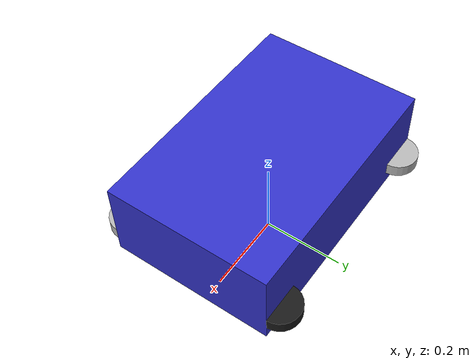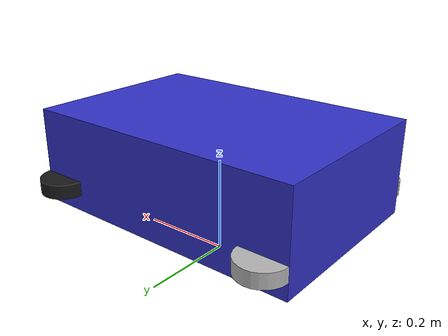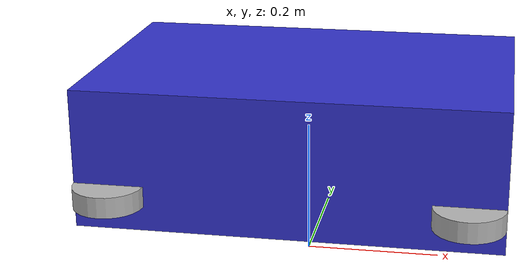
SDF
<?xml version="1.0" ?>
<sdf version="1.9">
  <model name="four_wheel_robot">
    <pose>0 0 0.1 0 0 0</pose>
    <static>false</static>

    <!-- MAIN BODY -->
    <link name="base_link">
      <pose>0 0 0.1 0 0 0</pose>

      <inertial>
        <mass>5.0</mass>
        <inertia>
          <ixx>0.2</ixx> <iyy>0.2</iyy> <izz>0.2</izz>
        </inertia>
      </inertial>

      <collision name="base_collision">
        <geometry>
          <box>
            <size>0.6 0.4 0.2</size>
          </box>
        </geometry>
      </collision>

      <visual name="base_visual">
        <geometry>
          <box>
            <size>0.6 0.4 0.2</size>
          </box>
        </geometry>
        <material>
          <ambient>0.2 0.2 0.8 1</ambient>
          <diffuse>0.2 0.2 0.8 1</diffuse>
        </material>
      </visual>

   <sensor name='gpu_lidar' type='gpu_lidar'>"
    <pose>0 0 0 0 0 0</pose>
    <topic>lidar</topic>
    <update_rate>10</update_rate>
    <ray>
        <scan>
            <horizontal>
                <samples>192</samples>
                <resolution>1</resolution>
                <min_angle>-1.0472</min_angle>
                <max_angle>1.0472</max_angle>
            </horizontal>
            <vertical>
                <samples>144</samples>
                <resolution>1</resolution>
                <min_angle>-0.7854</min_angle>
                <max_angle>0.7854</max_angle>
            </vertical>
        </scan>
        <range>
            <min>0.1</min>
            <max>75.0</max>
            <resolution>0.01</resolution>
        </range>

       <noise>
        <type>gaussian</type>
        <mean>0.0</mean>
        <stddev>0.01</stddev>
       </noise>
    </ray>
    <always_on>1</always_on>
    <visualize>true</visualize>
  </sensor>

  <sensor name="imu_sensor" type="imu">
    <always_on>1</always_on>
    <update_rate>1</update_rate>
    <visualize>true</visualize>
    <topic>imu</topic>
  </sensor>
    </link>

<!-- 4 WHEELS -->
    <!-- front-left -->
    <link name="wheel_fl">
      <pose>0.25 0.20 0.05 0 0 0</pose>
      <inertial>
        <mass>0.2</mass>
        <inertia>
          <ixx>0.001</ixx> <iyy>0.001</iyy> <izz>0.001</izz>
        </inertia>
      </inertial>
      <collision name="collision">
        <geometry>
          <cylinder>
            <radius>0.05</radius>
            <length>0.03</length>
          </cylinder>
        </geometry>
      </collision>
      <visual name="visual">
        <geometry>
          <cylinder>
            <radius>0.05</radius>
            <length>0.03</length>
          </cylinder>
        </geometry>
        <material><diffuse>0.1 0.1 0.1 1</diffuse></material>
      </visual>
    </link>

    <!-- front-right -->
    <link name="wheel_fr">
      <pose>0.25 -0.20 0.05 0 0 0</pose>
      <collision name="collision">
        <geometry><cylinder><radius>0.05</radius><length>0.03</length></cylinder></geometry>
      </collision>
      <visual name="visual">
        <geometry><cylinder><radius>0.05</radius><length>0.03</length></cylinder></geometry>
      </visual>
    </link>

    <!-- rear-left -->
    <link name="wheel_rl">
      <pose>-0.25 0.20 0.05 0 0 0</pose>
      <collision name="collision">
        <geometry><cylinder><radius>0.05</radius><length>0.03</length></cylinder></geometry>
      </collision>
      <visual name="visual">
        <geometry><cylinder><radius>0.05</radius><length>0.03</length></cylinder></geometry>
      </visual>
    </link>

<!-- rear-right -->
    <link name="wheel_rr">
      <pose>-0.25 -0.20 0.05 0 0 0</pose>
      <collision name="collision">
        <geometry><cylinder><radius>0.05</radius><length>0.03</length></cylinder></geometry>
      </collision>
      <visual name="visual">
        <geometry><cylinder><radius>0.05</radius><length>0.03</length></cylinder></geometry>
      </visual>
    </link>

    <!-- FIXED JOINTS (Wheels don't rotate yet) -->
    <joint name="joint_fl" type="fixed">
      <parent>base_link</parent>
      <child>wheel_fl</child>
    </joint>

    <joint name="joint_fr" type="fixed">
      <parent>base_link</parent>
      <child>wheel_fr</child>
    </joint>

    <joint name="joint_rl" type="fixed">
      <parent>base_link</parent>
      <child>wheel_rl</child>
    </joint>

    <joint name="joint_rr" type="fixed">
      <parent>base_link</parent>
      <child>wheel_rr</child>
    </joint>
  </model>
</sdf>
